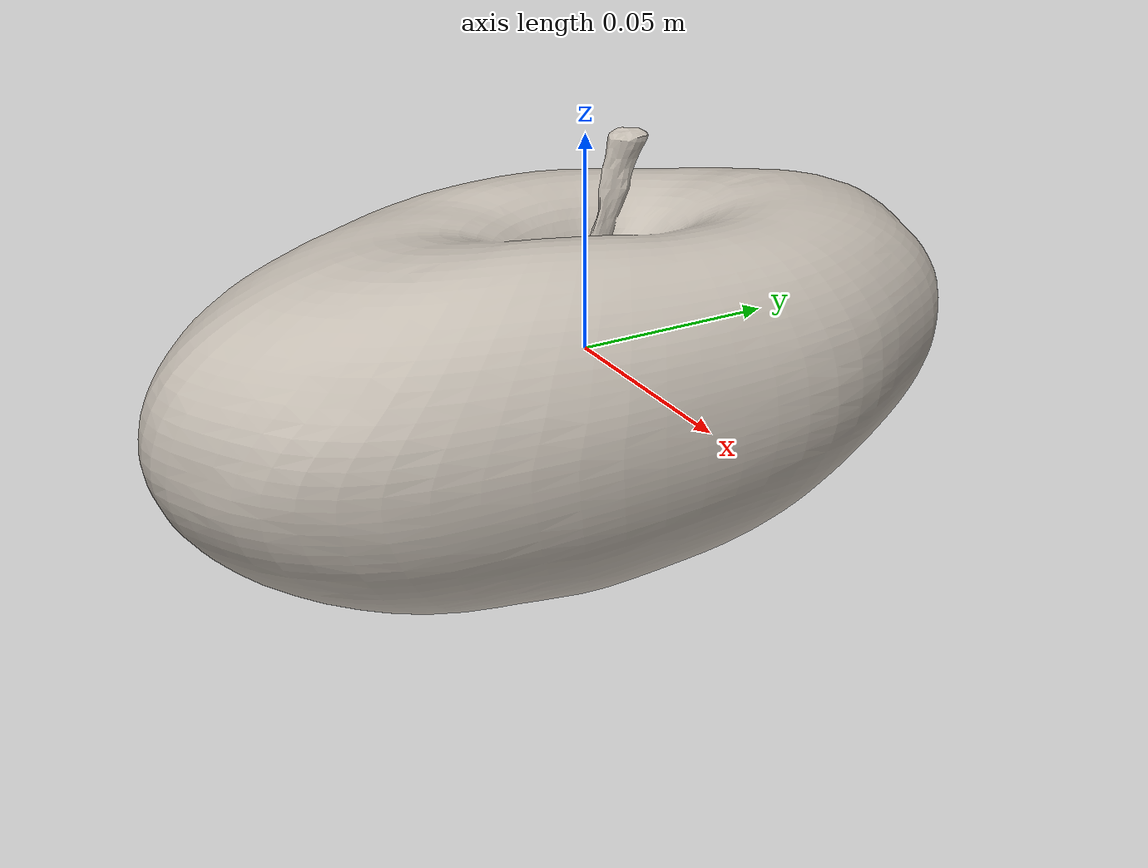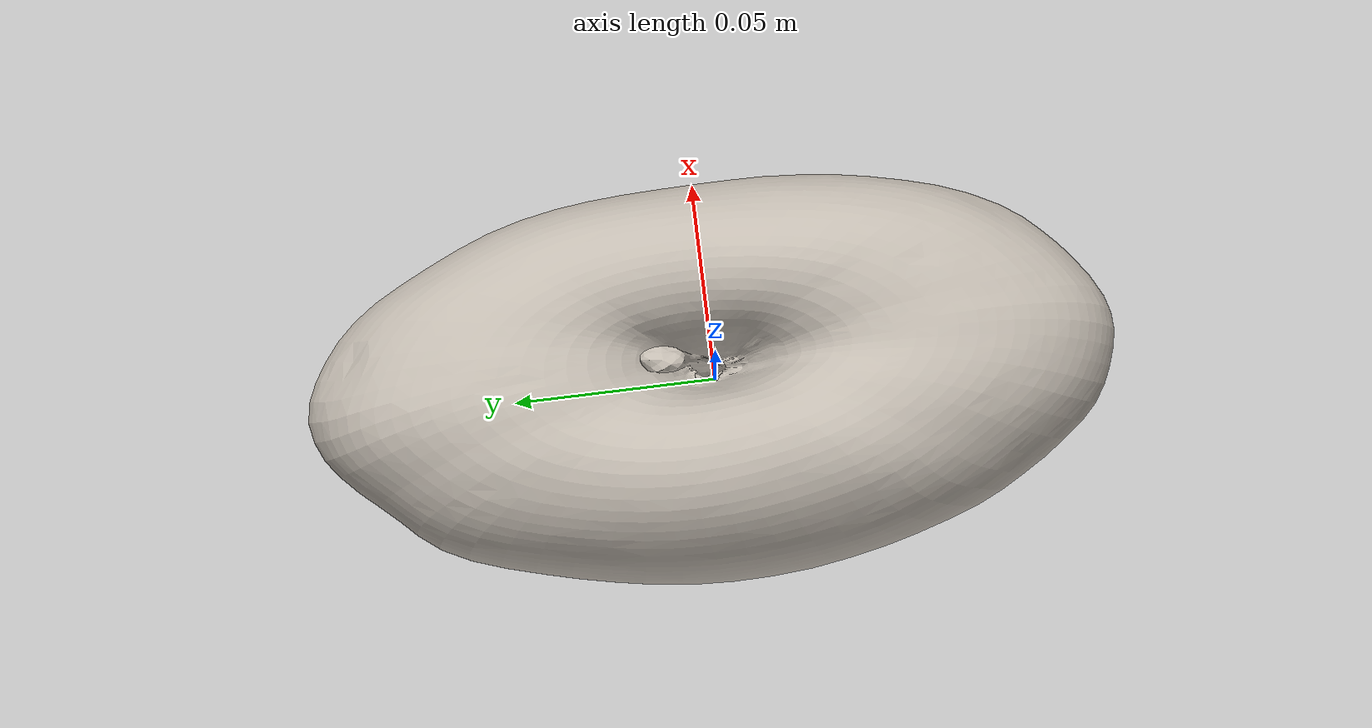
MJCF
<mujoco model="cucumber_7">
  <asset>
    <mesh file="visual/model_normalized_0.obj" name="model_normalized_0_vis" scale="0.1 0.2 0.1" refquat="0.7071067811865475 0.0 0.0 0.7071067811865476"/>
    <mesh file="collision/model_normalized_collision_22.obj" name="model_normalized_collision_22._coll" scale="0.1 0.2 0.1" refquat="0.7071067811865475 0.0 0.0 0.7071067811865476"/>
    <mesh file="collision/model_normalized_collision_23.obj" name="model_normalized_collision_23._coll" scale="0.1 0.2 0.1" refquat="0.7071067811865475 0.0 0.0 0.7071067811865476"/>
    <mesh file="collision/model_normalized_collision_21.obj" name="model_normalized_collision_21._coll" scale="0.1 0.2 0.1" refquat="0.7071067811865475 0.0 0.0 0.7071067811865476"/>
    <mesh file="collision/model_normalized_collision_20.obj" name="model_normalized_collision_20._coll" scale="0.1 0.2 0.1" refquat="0.7071067811865475 0.0 0.0 0.7071067811865476"/>
    <mesh file="collision/model_normalized_collision_24.obj" name="model_normalized_collision_24._coll" scale="0.1 0.2 0.1" refquat="0.7071067811865475 0.0 0.0 0.7071067811865476"/>
    <mesh file="collision/model_normalized_collision_30.obj" name="model_normalized_collision_30._coll" scale="0.1 0.2 0.1" refquat="0.7071067811865475 0.0 0.0 0.7071067811865476"/>
    <mesh file="collision/model_normalized_collision_18.obj" name="model_normalized_collision_18._coll" scale="0.1 0.2 0.1" refquat="0.7071067811865475 0.0 0.0 0.7071067811865476"/>
    <mesh file="collision/model_normalized_collision_19.obj" name="model_normalized_collision_19._coll" scale="0.1 0.2 0.1" refquat="0.7071067811865475 0.0 0.0 0.7071067811865476"/>
    <mesh file="collision/model_normalized_collision_31.obj" name="model_normalized_collision_31._coll" scale="0.1 0.2 0.1" refquat="0.7071067811865475 0.0 0.0 0.7071067811865476"/>
    <mesh file="collision/model_normalized_collision_25.obj" name="model_normalized_collision_25._coll" scale="0.1 0.2 0.1" refquat="0.7071067811865475 0.0 0.0 0.7071067811865476"/>
    <mesh file="collision/model_normalized_collision_27.obj" name="model_normalized_collision_27._coll" scale="0.1 0.2 0.1" refquat="0.7071067811865475 0.0 0.0 0.7071067811865476"/>
    <mesh file="collision/model_normalized_collision_26.obj" name="model_normalized_collision_26._coll" scale="0.1 0.2 0.1" refquat="0.7071067811865475 0.0 0.0 0.7071067811865476"/>
    <mesh file="collision/model_normalized_collision_9.obj" name="model_normalized_collision_9._coll" scale="0.1 0.2 0.1" refquat="0.7071067811865475 0.0 0.0 0.7071067811865476"/>
    <mesh file="collision/model_normalized_collision_8.obj" name="model_normalized_collision_8._coll" scale="0.1 0.2 0.1" refquat="0.7071067811865475 0.0 0.0 0.7071067811865476"/>
    <mesh file="collision/model_normalized_collision_6.obj" name="model_normalized_collision_6._coll" scale="0.1 0.2 0.1" refquat="0.7071067811865475 0.0 0.0 0.7071067811865476"/>
    <mesh file="collision/model_normalized_collision_7.obj" name="model_normalized_collision_7._coll" scale="0.1 0.2 0.1" refquat="0.7071067811865475 0.0 0.0 0.7071067811865476"/>
    <mesh file="collision/model_normalized_collision_5.obj" name="model_normalized_collision_5._coll" scale="0.1 0.2 0.1" refquat="0.7071067811865475 0.0 0.0 0.7071067811865476"/>
    <mesh file="collision/model_normalized_collision_4.obj" name="model_normalized_collision_4._coll" scale="0.1 0.2 0.1" refquat="0.7071067811865475 0.0 0.0 0.7071067811865476"/>
    <mesh file="collision/model_normalized_collision_0.obj" name="model_normalized_collision_0._coll" scale="0.1 0.2 0.1" refquat="0.7071067811865475 0.0 0.0 0.7071067811865476"/>
    <mesh file="collision/model_normalized_collision_1.obj" name="model_normalized_collision_1._coll" scale="0.1 0.2 0.1" refquat="0.7071067811865475 0.0 0.0 0.7071067811865476"/>
    <mesh file="collision/model_normalized_collision_3.obj" name="model_normalized_collision_3._coll" scale="0.1 0.2 0.1" refquat="0.7071067811865475 0.0 0.0 0.7071067811865476"/>
    <mesh file="collision/model_normalized_collision_2.obj" name="model_normalized_collision_2._coll" scale="0.1 0.2 0.1" refquat="0.7071067811865475 0.0 0.0 0.7071067811865476"/>
    <mesh file="collision/model_normalized_collision_17.obj" name="model_normalized_collision_17._coll" scale="0.1 0.2 0.1" refquat="0.7071067811865475 0.0 0.0 0.7071067811865476"/>
    <mesh file="collision/model_normalized_collision_16.obj" name="model_normalized_collision_16._coll" scale="0.1 0.2 0.1" refquat="0.7071067811865475 0.0 0.0 0.7071067811865476"/>
    <mesh file="collision/model_normalized_collision_28.obj" name="model_normalized_collision_28._coll" scale="0.1 0.2 0.1" refquat="0.7071067811865475 0.0 0.0 0.7071067811865476"/>
    <mesh file="collision/model_normalized_collision_14.obj" name="model_normalized_collision_14._coll" scale="0.1 0.2 0.1" refquat="0.7071067811865475 0.0 0.0 0.7071067811865476"/>
    <mesh file="collision/model_normalized_collision_15.obj" name="model_normalized_collision_15._coll" scale="0.1 0.2 0.1" refquat="0.7071067811865475 0.0 0.0 0.7071067811865476"/>
    <mesh file="collision/model_normalized_collision_29.obj" name="model_normalized_collision_29._coll" scale="0.1 0.2 0.1" refquat="0.7071067811865475 0.0 0.0 0.7071067811865476"/>
    <mesh file="collision/model_normalized_collision_11.obj" name="model_normalized_collision_11._coll" scale="0.1 0.2 0.1" refquat="0.7071067811865475 0.0 0.0 0.7071067811865476"/>
    <mesh file="collision/model_normalized_collision_10.obj" name="model_normalized_collision_10._coll" scale="0.1 0.2 0.1" refquat="0.7071067811865475 0.0 0.0 0.7071067811865476"/>
    <mesh file="collision/model_normalized_collision_12.obj" name="model_normalized_collision_12._coll" scale="0.1 0.2 0.1" refquat="0.7071067811865475 0.0 0.0 0.7071067811865476"/>
    <mesh file="collision/model_normalized_collision_13.obj" name="model_normalized_collision_13._coll" scale="0.1 0.2 0.1" refquat="0.7071067811865475 0.0 0.0 0.7071067811865476"/>
    <texture type="2d" name="image0" file="visual/image0.png"/>
    <material name="material.001" texture="image0" specular="0.5" shininess="0.008385636"/>
  </asset>
  <worldbody>
  <body>
      <body name="object">
        <geom solimp="0.998 0.998 0.001" solref="0.001 1" density="100" friction="0.95 0.3 0.1" type="mesh" mesh="model_normalized_0_vis" conaffinity="0" contype="0" group="1" material="material.001"/>
        <geom solimp="0.998 0.998 0.001" solref="0.001 1" density="100" friction="0.95 0.3 0.1" type="mesh" mesh="model_normalized_collision_22._coll" group="0" rgba="0.8 0.8 0.8 0.0"/>
        <geom solimp="0.998 0.998 0.001" solref="0.001 1" density="100" friction="0.95 0.3 0.1" type="mesh" mesh="model_normalized_collision_23._coll" group="0" rgba="0.8 0.8 0.8 0.0"/>
        <geom solimp="0.998 0.998 0.001" solref="0.001 1" density="100" friction="0.95 0.3 0.1" type="mesh" mesh="model_normalized_collision_21._coll" group="0" rgba="0.8 0.8 0.8 0.0"/>
        <geom solimp="0.998 0.998 0.001" solref="0.001 1" density="100" friction="0.95 0.3 0.1" type="mesh" mesh="model_normalized_collision_20._coll" group="0" rgba="0.8 0.8 0.8 0.0"/>
        <geom solimp="0.998 0.998 0.001" solref="0.001 1" density="100" friction="0.95 0.3 0.1" type="mesh" mesh="model_normalized_collision_24._coll" group="0" rgba="0.8 0.8 0.8 0.0"/>
        <geom solimp="0.998 0.998 0.001" solref="0.001 1" density="100" friction="0.95 0.3 0.1" type="mesh" mesh="model_normalized_collision_30._coll" group="0" rgba="0.8 0.8 0.8 0.0"/>
        <geom solimp="0.998 0.998 0.001" solref="0.001 1" density="100" friction="0.95 0.3 0.1" type="mesh" mesh="model_normalized_collision_18._coll" group="0" rgba="0.8 0.8 0.8 0.0"/>
        <geom solimp="0.998 0.998 0.001" solref="0.001 1" density="100" friction="0.95 0.3 0.1" type="mesh" mesh="model_normalized_collision_19._coll" group="0" rgba="0.8 0.8 0.8 0.0"/>
        <geom solimp="0.998 0.998 0.001" solref="0.001 1" density="100" friction="0.95 0.3 0.1" type="mesh" mesh="model_normalized_collision_31._coll" group="0" rgba="0.8 0.8 0.8 0.0"/>
        <geom solimp="0.998 0.998 0.001" solref="0.001 1" density="100" friction="0.95 0.3 0.1" type="mesh" mesh="model_normalized_collision_25._coll" group="0" rgba="0.8 0.8 0.8 0.0"/>
        <geom solimp="0.998 0.998 0.001" solref="0.001 1" density="100" friction="0.95 0.3 0.1" type="mesh" mesh="model_normalized_collision_27._coll" group="0" rgba="0.8 0.8 0.8 0.0"/>
        <geom solimp="0.998 0.998 0.001" solref="0.001 1" density="100" friction="0.95 0.3 0.1" type="mesh" mesh="model_normalized_collision_26._coll" group="0" rgba="0.8 0.8 0.8 0.0"/>
        <geom solimp="0.998 0.998 0.001" solref="0.001 1" density="100" friction="0.95 0.3 0.1" type="mesh" mesh="model_normalized_collision_9._coll" group="0" rgba="0.8 0.8 0.8 0.0"/>
        <geom solimp="0.998 0.998 0.001" solref="0.001 1" density="100" friction="0.95 0.3 0.1" type="mesh" mesh="model_normalized_collision_8._coll" group="0" rgba="0.8 0.8 0.8 0.0"/>
        <geom solimp="0.998 0.998 0.001" solref="0.001 1" density="100" friction="0.95 0.3 0.1" type="mesh" mesh="model_normalized_collision_6._coll" group="0" rgba="0.8 0.8 0.8 0.0"/>
        <geom solimp="0.998 0.998 0.001" solref="0.001 1" density="100" friction="0.95 0.3 0.1" type="mesh" mesh="model_normalized_collision_7._coll" group="0" rgba="0.8 0.8 0.8 0.0"/>
        <geom solimp="0.998 0.998 0.001" solref="0.001 1" density="100" friction="0.95 0.3 0.1" type="mesh" mesh="model_normalized_collision_5._coll" group="0" rgba="0.8 0.8 0.8 0.0"/>
        <geom solimp="0.998 0.998 0.001" solref="0.001 1" density="100" friction="0.95 0.3 0.1" type="mesh" mesh="model_normalized_collision_4._coll" group="0" rgba="0.8 0.8 0.8 0.0"/>
        <geom solimp="0.998 0.998 0.001" solref="0.001 1" density="100" friction="0.95 0.3 0.1" type="mesh" mesh="model_normalized_collision_0._coll" group="0" rgba="0.8 0.8 0.8 0.0"/>
        <geom solimp="0.998 0.998 0.001" solref="0.001 1" density="100" friction="0.95 0.3 0.1" type="mesh" mesh="model_normalized_collision_1._coll" group="0" rgba="0.8 0.8 0.8 0.0"/>
        <geom solimp="0.998 0.998 0.001" solref="0.001 1" density="100" friction="0.95 0.3 0.1" type="mesh" mesh="model_normalized_collision_3._coll" group="0" rgba="0.8 0.8 0.8 0.0"/>
        <geom solimp="0.998 0.998 0.001" solref="0.001 1" density="100" friction="0.95 0.3 0.1" type="mesh" mesh="model_normalized_collision_2._coll" group="0" rgba="0.8 0.8 0.8 0.0"/>
        <geom solimp="0.998 0.998 0.001" solref="0.001 1" density="100" friction="0.95 0.3 0.1" type="mesh" mesh="model_normalized_collision_17._coll" group="0" rgba="0.8 0.8 0.8 0.0"/>
        <geom solimp="0.998 0.998 0.001" solref="0.001 1" density="100" friction="0.95 0.3 0.1" type="mesh" mesh="model_normalized_collision_16._coll" group="0" rgba="0.8 0.8 0.8 0.0"/>
        <geom solimp="0.998 0.998 0.001" solref="0.001 1" density="100" friction="0.95 0.3 0.1" type="mesh" mesh="model_normalized_collision_28._coll" group="0" rgba="0.8 0.8 0.8 0.0"/>
        <geom solimp="0.998 0.998 0.001" solref="0.001 1" density="100" friction="0.95 0.3 0.1" type="mesh" mesh="model_normalized_collision_14._coll" group="0" rgba="0.8 0.8 0.8 0.0"/>
        <geom solimp="0.998 0.998 0.001" solref="0.001 1" density="100" friction="0.95 0.3 0.1" type="mesh" mesh="model_normalized_collision_15._coll" group="0" rgba="0.8 0.8 0.8 0.0"/>
        <geom solimp="0.998 0.998 0.001" solref="0.001 1" density="100" friction="0.95 0.3 0.1" type="mesh" mesh="model_normalized_collision_29._coll" group="0" rgba="0.8 0.8 0.8 0.0"/>
        <geom solimp="0.998 0.998 0.001" solref="0.001 1" density="100" friction="0.95 0.3 0.1" type="mesh" mesh="model_normalized_collision_11._coll" group="0" rgba="0.8 0.8 0.8 0.0"/>
        <geom solimp="0.998 0.998 0.001" solref="0.001 1" density="100" friction="0.95 0.3 0.1" type="mesh" mesh="model_normalized_collision_10._coll" group="0" rgba="0.8 0.8 0.8 0.0"/>
        <geom solimp="0.998 0.998 0.001" solref="0.001 1" density="100" friction="0.95 0.3 0.1" type="mesh" mesh="model_normalized_collision_12._coll" group="0" rgba="0.8 0.8 0.8 0.0"/>
        <geom solimp="0.998 0.998 0.001" solref="0.001 1" density="100" friction="0.95 0.3 0.1" type="mesh" mesh="model_normalized_collision_13._coll" group="0" rgba="0.8 0.8 0.8 0.0"/>
      </body>
      <site rgba="0 0 0 0" size="0.005" pos="-0.0002442721499999989 0.00020366595000000237 -0.0231695193" name="bottom_site"/>
      <site rgba="0 0 0 0" size="0.005" pos="-0.0002442721499999989 0.00020366595000000237 0.023267582100000003" name="top_site"/>
      <site rgba="0 0 0 0" size="0.005" pos="0.0249217671 0.0848161144 4.903139999999958e-05" name="horizontal_radius_site"/>
    </body>
    </worldbody>
</mujoco>
